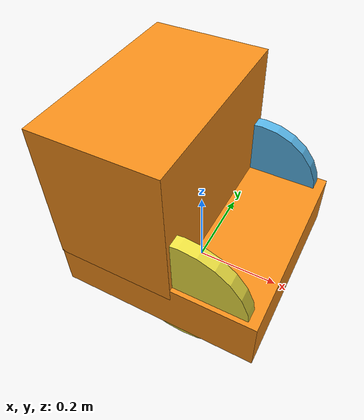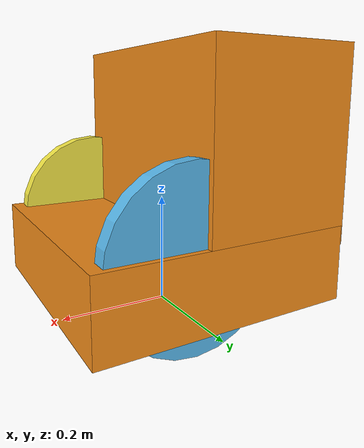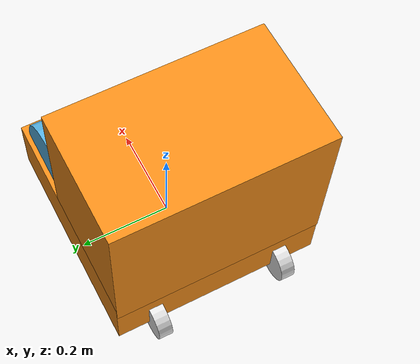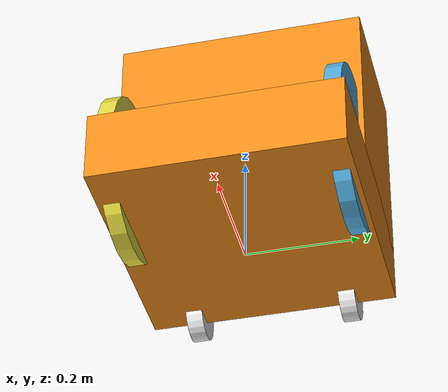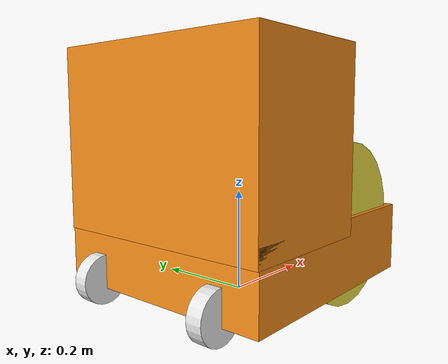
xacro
<?xml version="1.0"?>
<!-- Revolute-Revolute Manipulator -->
<robot name="icart_middle" xmlns:xacro="http://www.ros.org/wiki/xacro">
  <!-- Constants for robot dimensions -->
  <xacro:property name="PI" value="3.1415926535897931"/>

  <!-- Import Rviz colors -->
  <xacro:include filename="$(find icart_mini_description)/urdf/materials.xacro" />
  <xacro:include filename="$(find orne_description)/urdf/icart_middle.gazebo"/>

  <!-- Base Link -->
  <link name="base_link">
    <collision>
      <origin xyz="0 0 0.1" rpy="0 0 0"/>
      <geometry>
	<box size=".462 .45 .134"/>
      </geometry>
    </collision>

    <visual>
      <origin xyz="0 0 0.1" rpy="0 0 0"/>
      <geometry>
	<box size=".462 .45 .134"/>
      </geometry>
      <material name="orange"/>
    </visual>

    <collision>
      <origin xyz="-0.095 0 0.305" rpy="0 0 0"/>
      <geometry>
	<box size=".276 .45 .342"/>
      </geometry>
    </collision>

    <visual>
      <origin xyz="-0.095 0 0.305" rpy="0 0 0"/>
      <geometry>
	<box size=".276 .45 .342"/>
      </geometry>
      <material name="orange"/>
    </visual>

    <collision name="collision">
      <origin xyz="-0.231 -0.141 0.05" rpy="0 1.5707 1.5707"/>
      <geometry>
        <cylinder  length="0.03" radius="0.04625"/>
      </geometry>
    </collision>
    <visual name="visual">
      <origin xyz="-0.231 -0.141 0.05" rpy="0 1.5707 1.5707"/>
      <geometry>
        <cylinder  length="0.03" radius="0.04625"/>
      </geometry>
    </visual>

    <collision name="collision">
      <origin xyz="-0.231 0.141 0.05" rpy="0 1.5707 1.5707"/>
      <geometry>
        <cylinder  length="0.03" radius="0.04625"/>
      </geometry>
    </collision>
    <visual name="visual">
      <origin xyz="-0.231 0.141 0.05" rpy="0 1.5707 1.5707"/>
      <geometry>
        <cylinder  length="0.03" radius="0.04625"/>
      </geometry>
    </visual>

    <inertial>
       <mass value="15" />
       <origin xyz="0 0 0" rpy="0 0 0"/>
       <inertia ixx="1" ixy="0" ixz="0" iyy="1" iyz="0" izz="1" />
    </inertial>
  </link>

  <link name="visual_left_wheel">
    <visual name="visual">
      <origin xyz="0 0.0 0" rpy="0 1.5707 1.5707"/>
      <geometry>
        <cylinder  length="0.03" radius="0.151"/>
      </geometry>
    </visual>
  </link>

  <joint type="fixed" name="visual_left_wheel_hinge">
    <origin xyz="0.06 0.199796 0.1518" rpy="0 0 0"/>
    <child link="visual_left_wheel">visual_left_wheel</child>
    <parent link="base_link">base_link</parent>
    <axis xyz="0 1 0"/>
  </joint>

  <link name="left_wheel">
    <collision name="collision">
      <origin xyz="0 0.0 0" rpy="0 1.5707 1.5707"/>
      <geometry>
         <cylinder  length="0.03" radius="0.151"/>
      </geometry>
    </collision>
    <inertial>
      <mass value="1" />
      <origin xyz="0 0.0 0"/>
      <inertia ixx="0.1" ixy="0" ixz="0" iyy="0.1" iyz="0" izz="0.1" />
    </inertial>
  </link>

  <joint type="revolute" name="left_wheel_hinge">
    <origin xyz="0.06 0.199796 0.1518" rpy="0 0 0"/>
    <child link="left_wheel">left_wheel</child>
    <parent link="base_link">base_link</parent>
    <axis xyz="0 1 0"/>
    <limit effort="100" velocity="100.0"  lower="-5000" upper="5000" />
  </joint>

  <link name="visual_right_wheel">
    <visual name="visual">
      <origin xyz="0 0.0 0" rpy="0 1.5707 1.5707"/>
      <geometry>
        <cylinder  length="0.03" radius="0.151"/>
      </geometry>
    </visual>
  </link>

  <joint type="fixed" name="visual_right_wheel_hinge">
    <origin xyz="0.06 -0.199796 0.1518" rpy="0 0 0"/>
    <child link="visual_right_wheel">visual_right_wheel</child>
    <parent link="base_link">base_link</parent>
    <axis xyz="0 1 0"/>
  </joint>

  <link name="right_wheel">
    <collision name="collision">
      <origin xyz="0 0.0 0" rpy="0 1.5707 1.5707"/>
      <geometry>
         <cylinder  length="0.03" radius="0.151"/>
      </geometry>
    </collision>
    <inertial>
      <mass value="1" />
      <origin xyz="0 0.0 0"/>
      <inertia ixx="0.1" ixy="0" ixz="0" iyy="0.1" iyz="0" izz="0.1" />
    </inertial>
  </link>

  <joint type="revolute" name="right_wheel_hinge">
    <origin xyz="0.06 -0.199796 0.1518" rpy="0 0 0"/>
    <child link="right_wheel">right_wheel</child>
    <parent link="base_link">base_link</parent>
    <axis xyz="0 1 0"/>
    <limit effort="100" velocity="100.0"  lower="-5000" upper="5000" />
  </joint>

  <transmission name="tran1">
    <type>transmission_interface/SimpleTransmission</type>
    <joint name="left_wheel_hinge">
      <hardwareInterface>VelocityJointInterface</hardwareInterface>
    </joint>
  <actuator name="left_motor">
      <hardwareInterface>VelocityJointInterface</hardwareInterface>
      <mechanicalReduction>1</mechanicalReduction>
    </actuator>
  </transmission>

  <transmission name="tran2">
    <type>transmission_interface/SimpleTransmission</type>
    <joint name="right_wheel_hinge">
      <hardwareInterface>VelocityJointInterface</hardwareInterface>
    </joint>
  <actuator name="right_motor">
      <hardwareInterface>VelocityJointInterface</hardwareInterface>
      <mechanicalReduction>1</mechanicalReduction>
    </actuator>
  </transmission>
</robot>
